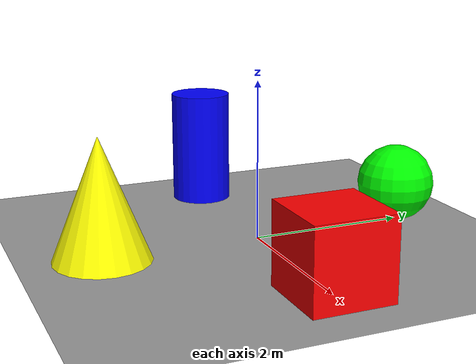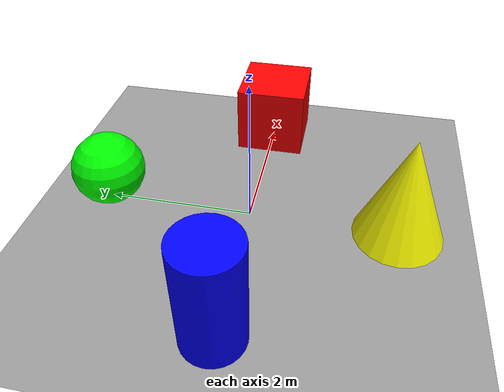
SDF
<sdf version="1.7">
 <world name="default">
  <model name="primitive_scene">
   <static>true</static>
   <link name="base_link">
    <visual name="box">
     <pose>2 0 0.5 0 0 0</pose>
     <geometry><box><size>1 1 1</size></box></geometry>
     <material><diffuse>1 0 0 1</diffuse></material>
    </visual>
    <visual name="sphere">
     <pose>0 2 0.5 0 0 0</pose>
     <geometry><sphere><radius>0.5</radius></sphere></geometry>
     <material><diffuse>0 1 0 1</diffuse></material>
    </visual>
    <visual name="cylinder">
     <pose>-2 0 0.75 0 0 0</pose>
     <geometry><cylinder><radius>0.4</radius><length>1.5</length></cylinder></geometry>
     <material><diffuse>0 0 1 1</diffuse></material>
    </visual>
    <visual name="cone">
     <pose>0 -2 0.75 0 0 0</pose>
     <geometry><cone><radius>0.6</radius><length>1.5</length></cone></geometry>
     <material><diffuse>1 1 0 1</diffuse></material>
    </visual>
    <visual name="plane">
     <geometry><plane><normal>0 0 1</normal><size>6 6</size></plane></geometry>
     <material><diffuse>0.6 0.6 0.6 1</diffuse></material>
    </visual>
   </link>
  </model>
 </world>
</sdf>
